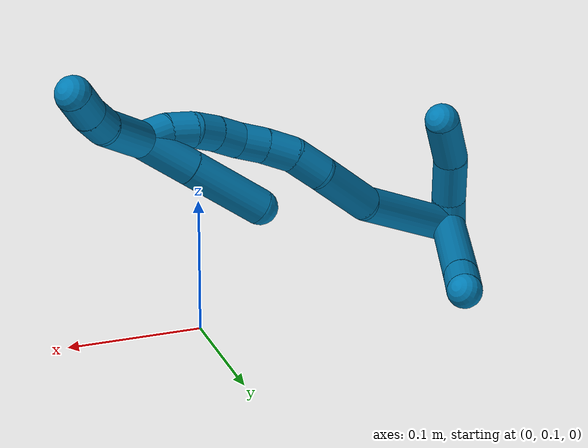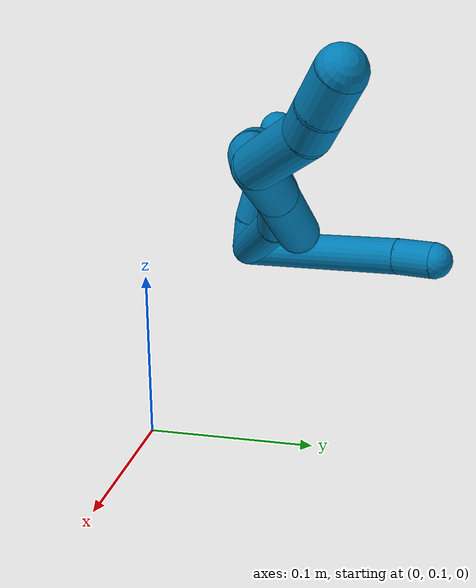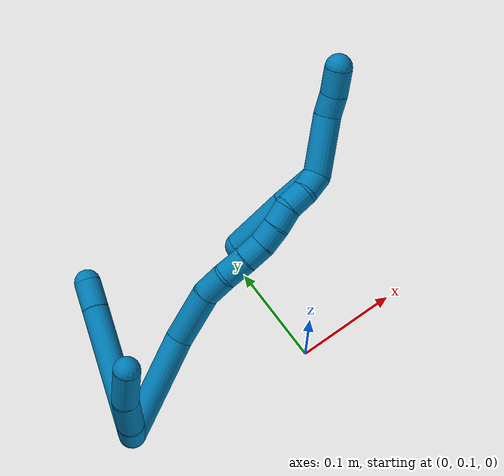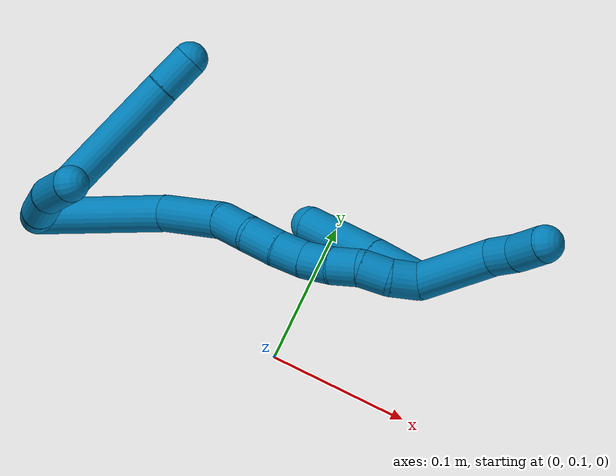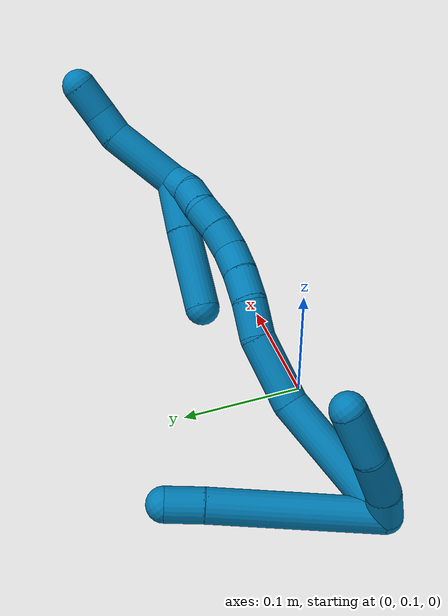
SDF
<sdf version="1.7">
 <world name="default">
  <model name="9">
   <static>0</static>
   <link name="9">
    <collision name="collision-cylinder-e_1_2_8">
     <pose>0.008453 0.043913 0.042144 -0.805958 0.137999 -0.058907</pose>
     <geometry><cylinder><radius>0.0125</radius><length>0.122897</length></cylinder></geometry>
     <surface>
      <friction><ode><mu>1.16</mu><mu2>1.16</mu2><slip1>0</slip1><slip2>0</slip2></ode></friction>
      <contact><ode><kp>1e+06</kp><kd>1</kd><max_vel>0</max_vel><min_depth>0.001</min_depth></ode></contact>
     </surface>
    </collision>
    <visual name="visual-cylinder-e_1_2_8">
     <pose>0.008453 0.043913 0.042144 -0.805958 0.137999 -0.058907</pose>
     <geometry><cylinder><radius>0.0125</radius><length>0.122897</length></cylinder></geometry>
     <material><ambient>0 0.490196 0.709804 1</ambient></material>
    </visual>
    <collision name="collision-cylinder-e_2_8_6">
     <pose>0.019357 0.097747 0.093188 -0.839492 0.181879 -0.081346</pose>
     <geometry><cylinder><radius>0.0125</radius><length>0.027103</length></cylinder></geometry>
     <surface>
      <friction><ode><mu>1.16</mu><mu2>1.16</mu2><slip1>0</slip1><slip2>0</slip2></ode></friction>
      <contact><ode><kp>1e+06</kp><kd>1</kd><max_vel>0</max_vel><min_depth>0.001</min_depth></ode></contact>
     </surface>
    </collision>
    <visual name="visual-cylinder-e_2_8_6">
     <pose>0.019357 0.097747 0.093188 -0.839492 0.181879 -0.081346</pose>
     <geometry><cylinder><radius>0.0125</radius><length>0.027103</length></cylinder></geometry>
     <material><ambient>0 0.490196 0.709804 1</ambient></material>
    </visual>
    <collision name="collision-cylinder-e_1_2_9">
     <pose>-0.00854 -0.001807 0.0077 0.230468 -0.823703 -0.101038</pose>
     <geometry><cylinder><radius>0.0125</radius><length>0.02328</length></cylinder></geometry>
     <surface>
      <friction><ode><mu>1.16</mu><mu2>1.16</mu2><slip1>0</slip1><slip2>0</slip2></ode></friction>
      <contact><ode><kp>1e+06</kp><kd>1</kd><max_vel>0</max_vel><min_depth>0.001</min_depth></ode></contact>
     </surface>
    </collision>
    <visual name="visual-cylinder-e_1_2_9">
     <pose>-0.00854 -0.001807 0.0077 0.230468 -0.823703 -0.101038</pose>
     <geometry><cylinder><radius>0.0125</radius><length>0.02328</length></cylinder></geometry>
     <material><ambient>0 0.490196 0.709804 1</ambient></material>
    </visual>
    <collision name="collision-cylinder-e_2_9_10">
     <pose>-0.029723 -0.003589 0.029527 -0.001764 -0.730053 0.000674</pose>
     <geometry><cylinder><radius>0.0125</radius><length>0.037917</length></cylinder></geometry>
     <surface>
      <friction><ode><mu>1.16</mu><mu2>1.16</mu2><slip1>0</slip1><slip2>0</slip2></ode></friction>
      <contact><ode><kp>1e+06</kp><kd>1</kd><max_vel>0</max_vel><min_depth>0.001</min_depth></ode></contact>
     </surface>
    </collision>
    <visual name="visual-cylinder-e_2_9_10">
     <pose>-0.029723 -0.003589 0.029527 -0.001764 -0.730053 0.000674</pose>
     <geometry><cylinder><radius>0.0125</radius><length>0.037917</length></cylinder></geometry>
     <material><ambient>0 0.490196 0.709804 1</ambient></material>
    </visual>
    <collision name="collision-cylinder-e_3_10_5">
     <pose>-0.052015 -0.004598 0.060455 0.061483 -0.520471 -0.016376</pose>
     <geometry><cylinder><radius>0.0125</radius><length>0.038803</length></cylinder></geometry>
     <surface>
      <friction><ode><mu>1.16</mu><mu2>1.16</mu2><slip1>0</slip1><slip2>0</slip2></ode></friction>
      <contact><ode><kp>1e+06</kp><kd>1</kd><max_vel>0</max_vel><min_depth>0.001</min_depth></ode></contact>
     </surface>
    </collision>
    <visual name="visual-cylinder-e_3_10_5">
     <pose>-0.052015 -0.004598 0.060455 0.061483 -0.520471 -0.016376</pose>
     <geometry><cylinder><radius>0.0125</radius><length>0.038803</length></cylinder></geometry>
     <material><ambient>0 0.490196 0.709804 1</ambient></material>
    </visual>
    <collision name="collision-cylinder-e_1_2_11">
     <pose>0.008492 -0.002126 0.049032 0.043327 0.171327 0.003721</pose>
     <geometry><cylinder><radius>0.0125</radius><length>0.099615</length></cylinder></geometry>
     <surface>
      <friction><ode><mu>1.16</mu><mu2>1.16</mu2><slip1>0</slip1><slip2>0</slip2></ode></friction>
      <contact><ode><kp>1e+06</kp><kd>1</kd><max_vel>0</max_vel><min_depth>0.001</min_depth></ode></contact>
     </surface>
    </collision>
    <visual name="visual-cylinder-e_1_2_11">
     <pose>0.008492 -0.002126 0.049032 0.043327 0.171327 0.003721</pose>
     <geometry><cylinder><radius>0.0125</radius><length>0.099615</length></cylinder></geometry>
     <material><ambient>0 0.490196 0.709804 1</ambient></material>
    </visual>
    <collision name="collision-cylinder-e_2_11_12">
     <pose>0.016046 -0.009976 0.122748 0.227869 -0.036992 -0.004233</pose>
     <geometry><cylinder><radius>0.0125</radius><length>0.050713</length></cylinder></geometry>
     <surface>
      <friction><ode><mu>1.16</mu><mu2>1.16</mu2><slip1>0</slip1><slip2>0</slip2></ode></friction>
      <contact><ode><kp>1e+06</kp><kd>1</kd><max_vel>0</max_vel><min_depth>0.001</min_depth></ode></contact>
     </surface>
    </collision>
    <visual name="visual-cylinder-e_2_11_12">
     <pose>0.016046 -0.009976 0.122748 0.227869 -0.036992 -0.004233</pose>
     <geometry><cylinder><radius>0.0125</radius><length>0.050713</length></cylinder></geometry>
     <material><ambient>0 0.490196 0.709804 1</ambient></material>
    </visual>
    <collision name="collision-cylinder-e_3_12_13">
     <pose>0.015101 -0.021851 0.158963 0.490073 -0.000515 -0.000129</pose>
     <geometry><cylinder><radius>0.0125</radius><length>0.026139</length></cylinder></geometry>
     <surface>
      <friction><ode><mu>1.16</mu><mu2>1.16</mu2><slip1>0</slip1><slip2>0</slip2></ode></friction>
      <contact><ode><kp>1e+06</kp><kd>1</kd><max_vel>0</max_vel><min_depth>0.001</min_depth></ode></contact>
     </surface>
    </collision>
    <visual name="visual-cylinder-e_3_12_13">
     <pose>0.015101 -0.021851 0.158963 0.490073 -0.000515 -0.000129</pose>
     <geometry><cylinder><radius>0.0125</radius><length>0.026139</length></cylinder></geometry>
     <material><ambient>0 0.490196 0.709804 1</ambient></material>
    </visual>
    <collision name="collision-cylinder-e_4_13_14">
     <pose>0.01806 -0.033259 0.180503 0.483517 0.256545 0.063587</pose>
     <geometry><cylinder><radius>0.0125</radius><length>0.023374</length></cylinder></geometry>
     <surface>
      <friction><ode><mu>1.16</mu><mu2>1.16</mu2><slip1>0</slip1><slip2>0</slip2></ode></friction>
      <contact><ode><kp>1e+06</kp><kd>1</kd><max_vel>0</max_vel><min_depth>0.001</min_depth></ode></contact>
     </surface>
    </collision>
    <visual name="visual-cylinder-e_4_13_14">
     <pose>0.01806 -0.033259 0.180503 0.483517 0.256545 0.063587</pose>
     <geometry><cylinder><radius>0.0125</radius><length>0.023374</length></cylinder></geometry>
     <material><ambient>0 0.490196 0.709804 1</ambient></material>
    </visual>
    <collision name="collision-cylinder-e_5_14_15">
     <pose>0.024295 -0.042298 0.199251 0.408639 0.330789 0.069147</pose>
     <geometry><cylinder><radius>0.0125</radius><length>0.020138</length></cylinder></geometry>
     <surface>
      <friction><ode><mu>1.16</mu><mu2>1.16</mu2><slip1>0</slip1><slip2>0</slip2></ode></friction>
      <contact><ode><kp>1e+06</kp><kd>1</kd><max_vel>0</max_vel><min_depth>0.001</min_depth></ode></contact>
     </surface>
    </collision>
    <visual name="visual-cylinder-e_5_14_15">
     <pose>0.024295 -0.042298 0.199251 0.408639 0.330789 0.069147</pose>
     <geometry><cylinder><radius>0.0125</radius><length>0.020138</length></cylinder></geometry>
     <material><ambient>0 0.490196 0.709804 1</ambient></material>
    </visual>
    <collision name="collision-cylinder-e_6_15_16">
     <pose>0.02967 -0.048481 0.217471 0.247828 0.21194 0.026495</pose>
     <geometry><cylinder><radius>0.0125</radius><length>0.020009</length></cylinder></geometry>
     <surface>
      <friction><ode><mu>1.16</mu><mu2>1.16</mu2><slip1>0</slip1><slip2>0</slip2></ode></friction>
      <contact><ode><kp>1e+06</kp><kd>1</kd><max_vel>0</max_vel><min_depth>0.001</min_depth></ode></contact>
     </surface>
    </collision>
    <visual name="visual-cylinder-e_6_15_16">
     <pose>0.02967 -0.048481 0.217471 0.247828 0.21194 0.026495</pose>
     <geometry><cylinder><radius>0.0125</radius><length>0.020009</length></cylinder></geometry>
     <material><ambient>0 0.490196 0.709804 1</ambient></material>
    </visual>
    <collision name="collision-cylinder-e_7_16_17">
     <pose>0.034418 -0.051907 0.236547 0.106641 0.267405 0.014357</pose>
     <geometry><cylinder><radius>0.0125</radius><length>0.020009</length></cylinder></geometry>
     <surface>
      <friction><ode><mu>1.16</mu><mu2>1.16</mu2><slip1>0</slip1><slip2>0</slip2></ode></friction>
      <contact><ode><kp>1e+06</kp><kd>1</kd><max_vel>0</max_vel><min_depth>0.001</min_depth></ode></contact>
     </surface>
    </collision>
    <visual name="visual-cylinder-e_7_16_17">
     <pose>0.034418 -0.051907 0.236547 0.106641 0.267405 0.014357</pose>
     <geometry><cylinder><radius>0.0125</radius><length>0.020009</length></cylinder></geometry>
     <material><ambient>0 0.490196 0.709804 1</ambient></material>
    </visual>
    <collision name="collision-cylinder-e_8_17_18">
     <pose>0.04228 -0.055559 0.254258 0.312758 0.548954 0.088734</pose>
     <geometry><cylinder><radius>0.0125</radius><length>0.020002</length></cylinder></geometry>
     <surface>
      <friction><ode><mu>1.16</mu><mu2>1.16</mu2><slip1>0</slip1><slip2>0</slip2></ode></friction>
      <contact><ode><kp>1e+06</kp><kd>1</kd><max_vel>0</max_vel><min_depth>0.001</min_depth></ode></contact>
     </surface>
    </collision>
    <visual name="visual-cylinder-e_8_17_18">
     <pose>0.04228 -0.055559 0.254258 0.312758 0.548954 0.088734</pose>
     <geometry><cylinder><radius>0.0125</radius><length>0.020002</length></cylinder></geometry>
     <material><ambient>0 0.490196 0.709804 1</ambient></material>
    </visual>
    <collision name="collision-cylinder-e_9_18_1">
     <pose>0.054062 -0.058353 0.269921 0.022355 0.715812 0.008361</pose>
     <geometry><cylinder><radius>0.0125</radius><length>0.020002</length></cylinder></geometry>
     <surface>
      <friction><ode><mu>1.16</mu><mu2>1.16</mu2><slip1>0</slip1><slip2>0</slip2></ode></friction>
      <contact><ode><kp>1e+06</kp><kd>1</kd><max_vel>0</max_vel><min_depth>0.001</min_depth></ode></contact>
     </surface>
    </collision>
    <visual name="visual-cylinder-e_9_18_1">
     <pose>0.054062 -0.058353 0.269921 0.022355 0.715812 0.008361</pose>
     <geometry><cylinder><radius>0.0125</radius><length>0.020002</length></cylinder></geometry>
     <material><ambient>0 0.490196 0.709804 1</ambient></material>
    </visual>
    <collision name="collision-cylinder-e_1_1_19">
     <pose>0.061767 -0.052794 0.304135 -0.211553 0.04186 -0.004445</pose>
     <geometry><cylinder><radius>0.0125</radius><length>0.054602</length></cylinder></geometry>
     <surface>
      <friction><ode><mu>1.16</mu><mu2>1.16</mu2><slip1>0</slip1><slip2>0</slip2></ode></friction>
      <contact><ode><kp>1e+06</kp><kd>1</kd><max_vel>0</max_vel><min_depth>0.001</min_depth></ode></contact>
     </surface>
    </collision>
    <visual name="visual-cylinder-e_1_1_19">
     <pose>0.061767 -0.052794 0.304135 -0.211553 0.04186 -0.004445</pose>
     <geometry><cylinder><radius>0.0125</radius><length>0.054602</length></cylinder></geometry>
     <material><ambient>0 0.490196 0.709804 1</ambient></material>
    </visual>
    <collision name="collision-cylinder-e_2_19_20">
     <pose>0.061482 -0.047204 0.34088 0.013613 -0.140779 -0.00096</pose>
     <geometry><cylinder><radius>0.0125</radius><length>0.020357</length></cylinder></geometry>
     <surface>
      <friction><ode><mu>1.16</mu><mu2>1.16</mu2><slip1>0</slip1><slip2>0</slip2></ode></friction>
      <contact><ode><kp>1e+06</kp><kd>1</kd><max_vel>0</max_vel><min_depth>0.001</min_depth></ode></contact>
     </surface>
    </collision>
    <visual name="visual-cylinder-e_2_19_20">
     <pose>0.061482 -0.047204 0.34088 0.013613 -0.140779 -0.00096</pose>
     <geometry><cylinder><radius>0.0125</radius><length>0.020357</length></cylinder></geometry>
     <material><ambient>0 0.490196 0.709804 1</ambient></material>
    </visual>
    <collision name="collision-cylinder-e_3_20_4">
     <pose>0.056645 -0.046787 0.362992 -0.045991 -0.275684 0.006381</pose>
     <geometry><cylinder><radius>0.0125</radius><length>0.025041</length></cylinder></geometry>
     <surface>
      <friction><ode><mu>1.16</mu><mu2>1.16</mu2><slip1>0</slip1><slip2>0</slip2></ode></friction>
      <contact><ode><kp>1e+06</kp><kd>1</kd><max_vel>0</max_vel><min_depth>0.001</min_depth></ode></contact>
     </surface>
    </collision>
    <visual name="visual-cylinder-e_3_20_4">
     <pose>0.056645 -0.046787 0.362992 -0.045991 -0.275684 0.006381</pose>
     <geometry><cylinder><radius>0.0125</radius><length>0.025041</length></cylinder></geometry>
     <material><ambient>0 0.490196 0.709804 1</ambient></material>
    </visual>
    <collision name="collision-cylinder-e_1_1_21">
     <pose>0.05954 -0.048677 0.260077 -2.62643 -0.054218 0.20514</pose>
     <geometry><cylinder><radius>0.0125</radius><length>0.040022</length></cylinder></geometry>
     <surface>
      <friction><ode><mu>1.16</mu><mu2>1.16</mu2><slip1>0</slip1><slip2>0</slip2></ode></friction>
      <contact><ode><kp>1e+06</kp><kd>1</kd><max_vel>0</max_vel><min_depth>0.001</min_depth></ode></contact>
     </surface>
    </collision>
    <visual name="visual-cylinder-e_1_1_21">
     <pose>0.05954 -0.048677 0.260077 -2.62643 -0.054218 0.20514</pose>
     <geometry><cylinder><radius>0.0125</radius><length>0.040022</length></cylinder></geometry>
     <material><ambient>0 0.490196 0.709804 1</ambient></material>
    </visual>
    <collision name="collision-cylinder-e_2_21_3">
     <pose>0.05703 -0.025032 0.216102 -2.66279 -0.047556 0.194261</pose>
     <geometry><cylinder><radius>0.0125</radius><length>0.059978</length></cylinder></geometry>
     <surface>
      <friction><ode><mu>1.16</mu><mu2>1.16</mu2><slip1>0</slip1><slip2>0</slip2></ode></friction>
      <contact><ode><kp>1e+06</kp><kd>1</kd><max_vel>0</max_vel><min_depth>0.001</min_depth></ode></contact>
     </surface>
    </collision>
    <visual name="visual-cylinder-e_2_21_3">
     <pose>0.05703 -0.025032 0.216102 -2.66279 -0.047556 0.194261</pose>
     <geometry><cylinder><radius>0.0125</radius><length>0.059978</length></cylinder></geometry>
     <material><ambient>0 0.490196 0.709804 1</ambient></material>
    </visual>
    <collision name="collision-sphere-3">
     <pose>0.055605 -0.011231 0.189516 0 -0 0</pose>
     <geometry><sphere><radius>0.0125</radius></sphere></geometry>
     <surface>
      <friction><ode><mu>1.16</mu><mu2>1.16</mu2><slip1>0</slip1><slip2>0</slip2></ode></friction>
      <contact><ode><kp>1e+06</kp><kd>1</kd><max_vel>0</max_vel><min_depth>0.001</min_depth></ode></contact>
     </surface>
    </collision>
    <visual name="visual-sphere-3">
     <pose>0.055605 -0.011231 0.189516 0 -0 0</pose>
     <geometry><sphere><radius>0.0125</radius></sphere></geometry>
     <material><ambient>0 0.490196 0.709804 1</ambient></material>
    </visual>
    <collision name="collision-sphere-21">
     <pose>0.058456 -0.038833 0.242689 0 -0 0</pose>
     <geometry><sphere><radius>0.0125</radius></sphere></geometry>
     <surface>
      <friction><ode><mu>1.16</mu><mu2>1.16</mu2><slip1>0</slip1><slip2>0</slip2></ode></friction>
      <contact><ode><kp>1e+06</kp><kd>1</kd><max_vel>0</max_vel><min_depth>0.001</min_depth></ode></contact>
     </surface>
    </collision>
    <visual name="visual-sphere-21">
     <pose>0.058456 -0.038833 0.242689 0 -0 0</pose>
     <geometry><sphere><radius>0.0125</radius></sphere></geometry>
     <material><ambient>0 0.490196 0.709804 1</ambient></material>
    </visual>
    <collision name="collision-sphere-4">
     <pose>0.053237 -0.046233 0.375027 0 -0 0</pose>
     <geometry><sphere><radius>0.0125</radius></sphere></geometry>
     <surface>
      <friction><ode><mu>1.16</mu><mu2>1.16</mu2><slip1>0</slip1><slip2>0</slip2></ode></friction>
      <contact><ode><kp>1e+06</kp><kd>1</kd><max_vel>0</max_vel><min_depth>0.001</min_depth></ode></contact>
     </surface>
    </collision>
    <visual name="visual-sphere-4">
     <pose>0.053237 -0.046233 0.375027 0 -0 0</pose>
     <geometry><sphere><radius>0.0125</radius></sphere></geometry>
     <material><ambient>0 0.490196 0.709804 1</ambient></material>
    </visual>
    <collision name="collision-sphere-20">
     <pose>0.060054 -0.047341 0.350957 0 -0 0</pose>
     <geometry><sphere><radius>0.0125</radius></sphere></geometry>
     <surface>
      <friction><ode><mu>1.16</mu><mu2>1.16</mu2><slip1>0</slip1><slip2>0</slip2></ode></friction>
      <contact><ode><kp>1e+06</kp><kd>1</kd><max_vel>0</max_vel><min_depth>0.001</min_depth></ode></contact>
     </surface>
    </collision>
    <visual name="visual-sphere-20">
     <pose>0.060054 -0.047341 0.350957 0 -0 0</pose>
     <geometry><sphere><radius>0.0125</radius></sphere></geometry>
     <material><ambient>0 0.490196 0.709804 1</ambient></material>
    </visual>
    <collision name="collision-sphere-5">
     <pose>-0.061663 -0.005632 0.077255 0 -0 0</pose>
     <geometry><sphere><radius>0.0125</radius></sphere></geometry>
     <surface>
      <friction><ode><mu>1.16</mu><mu2>1.16</mu2><slip1>0</slip1><slip2>0</slip2></ode></friction>
      <contact><ode><kp>1e+06</kp><kd>1</kd><max_vel>0</max_vel><min_depth>0.001</min_depth></ode></contact>
     </surface>
    </collision>
    <visual name="visual-sphere-5">
     <pose>-0.061663 -0.005632 0.077255 0 -0 0</pose>
     <geometry><sphere><radius>0.0125</radius></sphere></geometry>
     <material><ambient>0 0.490196 0.709804 1</ambient></material>
    </visual>
    <collision name="collision-sphere-10">
     <pose>-0.042367 -0.003564 0.043654 0 -0 0</pose>
     <geometry><sphere><radius>0.0125</radius></sphere></geometry>
     <surface>
      <friction><ode><mu>1.16</mu><mu2>1.16</mu2><slip1>0</slip1><slip2>0</slip2></ode></friction>
      <contact><ode><kp>1e+06</kp><kd>1</kd><max_vel>0</max_vel><min_depth>0.001</min_depth></ode></contact>
     </surface>
    </collision>
    <visual name="visual-sphere-10">
     <pose>-0.042367 -0.003564 0.043654 0 -0 0</pose>
     <geometry><sphere><radius>0.0125</radius></sphere></geometry>
     <material><ambient>0 0.490196 0.709804 1</ambient></material>
    </visual>
    <collision name="collision-sphere-6">
     <pose>0.021808 0.107667 0.102089 0 -0 0</pose>
     <geometry><sphere><radius>0.0125</radius></sphere></geometry>
     <surface>
      <friction><ode><mu>1.16</mu><mu2>1.16</mu2><slip1>0</slip1><slip2>0</slip2></ode></friction>
      <contact><ode><kp>1e+06</kp><kd>1</kd><max_vel>0</max_vel><min_depth>0.001</min_depth></ode></contact>
     </surface>
    </collision>
    <visual name="visual-sphere-6">
     <pose>0.021808 0.107667 0.102089 0 -0 0</pose>
     <geometry><sphere><radius>0.0125</radius></sphere></geometry>
     <material><ambient>0 0.490196 0.709804 1</ambient></material>
    </visual>
    <collision name="collision-sphere-9">
     <pose>-0.01708 -0.003614 0.015401 0 -0 0</pose>
     <geometry><sphere><radius>0.0125</radius></sphere></geometry>
     <surface>
      <friction><ode><mu>1.16</mu><mu2>1.16</mu2><slip1>0</slip1><slip2>0</slip2></ode></friction>
      <contact><ode><kp>1e+06</kp><kd>1</kd><max_vel>0</max_vel><min_depth>0.001</min_depth></ode></contact>
     </surface>
    </collision>
    <visual name="visual-sphere-9">
     <pose>-0.01708 -0.003614 0.015401 0 -0 0</pose>
     <geometry><sphere><radius>0.0125</radius></sphere></geometry>
     <material><ambient>0 0.490196 0.709804 1</ambient></material>
    </visual>
    <collision name="collision-sphere-2">
     <geometry><sphere><radius>0.0125</radius></sphere></geometry>
     <surface>
      <friction><ode><mu>1.16</mu><mu2>1.16</mu2><slip1>0</slip1><slip2>0</slip2></ode></friction>
      <contact><ode><kp>1e+06</kp><kd>1</kd><max_vel>0</max_vel><min_depth>0.001</min_depth></ode></contact>
     </surface>
    </collision>
    <visual name="visual-sphere-2">
     <geometry><sphere><radius>0.0125</radius></sphere></geometry>
     <material><ambient>0 0.490196 0.709804 1</ambient></material>
    </visual>
    <collision name="collision-sphere-19">
     <pose>0.06291 -0.047067 0.330803 0 -0 0</pose>
     <geometry><sphere><radius>0.0125</radius></sphere></geometry>
     <surface>
      <friction><ode><mu>1.16</mu><mu2>1.16</mu2><slip1>0</slip1><slip2>0</slip2></ode></friction>
      <contact><ode><kp>1e+06</kp><kd>1</kd><max_vel>0</max_vel><min_depth>0.001</min_depth></ode></contact>
     </surface>
    </collision>
    <visual name="visual-sphere-19">
     <pose>0.06291 -0.047067 0.330803 0 -0 0</pose>
     <geometry><sphere><radius>0.0125</radius></sphere></geometry>
     <material><ambient>0 0.490196 0.709804 1</ambient></material>
    </visual>
    <collision name="collision-sphere-8">
     <pose>0.016906 0.087827 0.084287 0 -0 0</pose>
     <geometry><sphere><radius>0.0125</radius></sphere></geometry>
     <surface>
      <friction><ode><mu>1.16</mu><mu2>1.16</mu2><slip1>0</slip1><slip2>0</slip2></ode></friction>
      <contact><ode><kp>1e+06</kp><kd>1</kd><max_vel>0</max_vel><min_depth>0.001</min_depth></ode></contact>
     </surface>
    </collision>
    <visual name="visual-sphere-8">
     <pose>0.016906 0.087827 0.084287 0 -0 0</pose>
     <geometry><sphere><radius>0.0125</radius></sphere></geometry>
     <material><ambient>0 0.490196 0.709804 1</ambient></material>
    </visual>
    <collision name="collision-sphere-11">
     <pose>0.016983 -0.004252 0.098064 0 -0 0</pose>
     <geometry><sphere><radius>0.0125</radius></sphere></geometry>
     <surface>
      <friction><ode><mu>1.16</mu><mu2>1.16</mu2><slip1>0</slip1><slip2>0</slip2></ode></friction>
      <contact><ode><kp>1e+06</kp><kd>1</kd><max_vel>0</max_vel><min_depth>0.001</min_depth></ode></contact>
     </surface>
    </collision>
    <visual name="visual-sphere-11">
     <pose>0.016983 -0.004252 0.098064 0 -0 0</pose>
     <geometry><sphere><radius>0.0125</radius></sphere></geometry>
     <material><ambient>0 0.490196 0.709804 1</ambient></material>
    </visual>
    <collision name="collision-sphere-12">
     <pose>0.015108 -0.0157 0.147432 0 -0 0</pose>
     <geometry><sphere><radius>0.0125</radius></sphere></geometry>
     <surface>
      <friction><ode><mu>1.16</mu><mu2>1.16</mu2><slip1>0</slip1><slip2>0</slip2></ode></friction>
      <contact><ode><kp>1e+06</kp><kd>1</kd><max_vel>0</max_vel><min_depth>0.001</min_depth></ode></contact>
     </surface>
    </collision>
    <visual name="visual-sphere-12">
     <pose>0.015108 -0.0157 0.147432 0 -0 0</pose>
     <geometry><sphere><radius>0.0125</radius></sphere></geometry>
     <material><ambient>0 0.490196 0.709804 1</ambient></material>
    </visual>
    <collision name="collision-sphere-13">
     <pose>0.015094 -0.028003 0.170494 0 -0 0</pose>
     <geometry><sphere><radius>0.0125</radius></sphere></geometry>
     <surface>
      <friction><ode><mu>1.16</mu><mu2>1.16</mu2><slip1>0</slip1><slip2>0</slip2></ode></friction>
      <contact><ode><kp>1e+06</kp><kd>1</kd><max_vel>0</max_vel><min_depth>0.001</min_depth></ode></contact>
     </surface>
    </collision>
    <visual name="visual-sphere-13">
     <pose>0.015094 -0.028003 0.170494 0 -0 0</pose>
     <geometry><sphere><radius>0.0125</radius></sphere></geometry>
     <material><ambient>0 0.490196 0.709804 1</ambient></material>
    </visual>
    <collision name="collision-sphere-14">
     <pose>0.021025 -0.038514 0.190512 0 -0 0</pose>
     <geometry><sphere><radius>0.0125</radius></sphere></geometry>
     <surface>
      <friction><ode><mu>1.16</mu><mu2>1.16</mu2><slip1>0</slip1><slip2>0</slip2></ode></friction>
      <contact><ode><kp>1e+06</kp><kd>1</kd><max_vel>0</max_vel><min_depth>0.001</min_depth></ode></contact>
     </surface>
    </collision>
    <visual name="visual-sphere-14">
     <pose>0.021025 -0.038514 0.190512 0 -0 0</pose>
     <geometry><sphere><radius>0.0125</radius></sphere></geometry>
     <material><ambient>0 0.490196 0.709804 1</ambient></material>
    </visual>
    <collision name="collision-sphere-15">
     <pose>0.027566 -0.046082 0.207989 0 -0 0</pose>
     <geometry><sphere><radius>0.0125</radius></sphere></geometry>
     <surface>
      <friction><ode><mu>1.16</mu><mu2>1.16</mu2><slip1>0</slip1><slip2>0</slip2></ode></friction>
      <contact><ode><kp>1e+06</kp><kd>1</kd><max_vel>0</max_vel><min_depth>0.001</min_depth></ode></contact>
     </surface>
    </collision>
    <visual name="visual-sphere-15">
     <pose>0.027566 -0.046082 0.207989 0 -0 0</pose>
     <geometry><sphere><radius>0.0125</radius></sphere></geometry>
     <material><ambient>0 0.490196 0.709804 1</ambient></material>
    </visual>
    <collision name="collision-sphere-16">
     <pose>0.031775 -0.05088 0.226953 0 -0 0</pose>
     <geometry><sphere><radius>0.0125</radius></sphere></geometry>
     <surface>
      <friction><ode><mu>1.16</mu><mu2>1.16</mu2><slip1>0</slip1><slip2>0</slip2></ode></friction>
      <contact><ode><kp>1e+06</kp><kd>1</kd><max_vel>0</max_vel><min_depth>0.001</min_depth></ode></contact>
     </surface>
    </collision>
    <visual name="visual-sphere-16">
     <pose>0.031775 -0.05088 0.226953 0 -0 0</pose>
     <geometry><sphere><radius>0.0125</radius></sphere></geometry>
     <material><ambient>0 0.490196 0.709804 1</ambient></material>
    </visual>
    <collision name="collision-sphere-17">
     <pose>0.037062 -0.052934 0.246141 0 -0 0</pose>
     <geometry><sphere><radius>0.0125</radius></sphere></geometry>
     <surface>
      <friction><ode><mu>1.16</mu><mu2>1.16</mu2><slip1>0</slip1><slip2>0</slip2></ode></friction>
      <contact><ode><kp>1e+06</kp><kd>1</kd><max_vel>0</max_vel><min_depth>0.001</min_depth></ode></contact>
     </surface>
    </collision>
    <visual name="visual-sphere-17">
     <pose>0.037062 -0.052934 0.246141 0 -0 0</pose>
     <geometry><sphere><radius>0.0125</radius></sphere></geometry>
     <material><ambient>0 0.490196 0.709804 1</ambient></material>
    </visual>
    <collision name="collision-sphere-18">
     <pose>0.047499 -0.058185 0.262376 0 -0 0</pose>
     <geometry><sphere><radius>0.0125</radius></sphere></geometry>
     <surface>
      <friction><ode><mu>1.16</mu><mu2>1.16</mu2><slip1>0</slip1><slip2>0</slip2></ode></friction>
      <contact><ode><kp>1e+06</kp><kd>1</kd><max_vel>0</max_vel><min_depth>0.001</min_depth></ode></contact>
     </surface>
    </collision>
    <visual name="visual-sphere-18">
     <pose>0.047499 -0.058185 0.262376 0 -0 0</pose>
     <geometry><sphere><radius>0.0125</radius></sphere></geometry>
     <material><ambient>0 0.490196 0.709804 1</ambient></material>
    </visual>
    <collision name="collision-sphere-1">
     <pose>0.060625 -0.058522 0.277466 0 -0 0</pose>
     <geometry><sphere><radius>0.0125</radius></sphere></geometry>
     <surface>
      <friction><ode><mu>1.16</mu><mu2>1.16</mu2><slip1>0</slip1><slip2>0</slip2></ode></friction>
      <contact><ode><kp>1e+06</kp><kd>1</kd><max_vel>0</max_vel><min_depth>0.001</min_depth></ode></contact>
     </surface>
    </collision>
    <visual name="visual-sphere-1">
     <pose>0.060625 -0.058522 0.277466 0 -0 0</pose>
     <geometry><sphere><radius>0.0125</radius></sphere></geometry>
     <material><ambient>0 0.490196 0.709804 1</ambient></material>
    </visual>
    <inertial>
     <pose>0.021654 -0.010641 0.147227 0 -0 0</pose>
     <mass>0.75</mass>
     <inertia>
      <ixx>0.000323</ixx>
      <ixy>0</ixy>
      <ixz>0</ixz>
      <iyy>0.000237</iyy>
      <iyz>0</iyz>
      <izz>-0.000115</izz>
     </inertia>
    </inertial>
   </link>
   <pose>-0.187905 0.115863 0.06175 -0.40893 0.905361 0.041798</pose>
  </model>
 </world>
</sdf>
